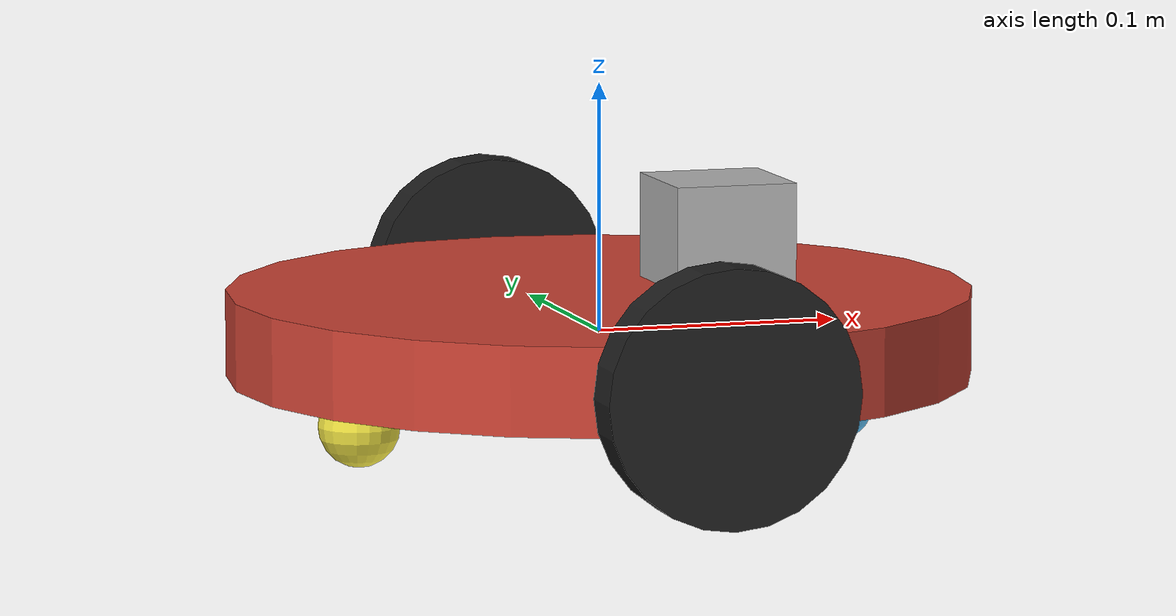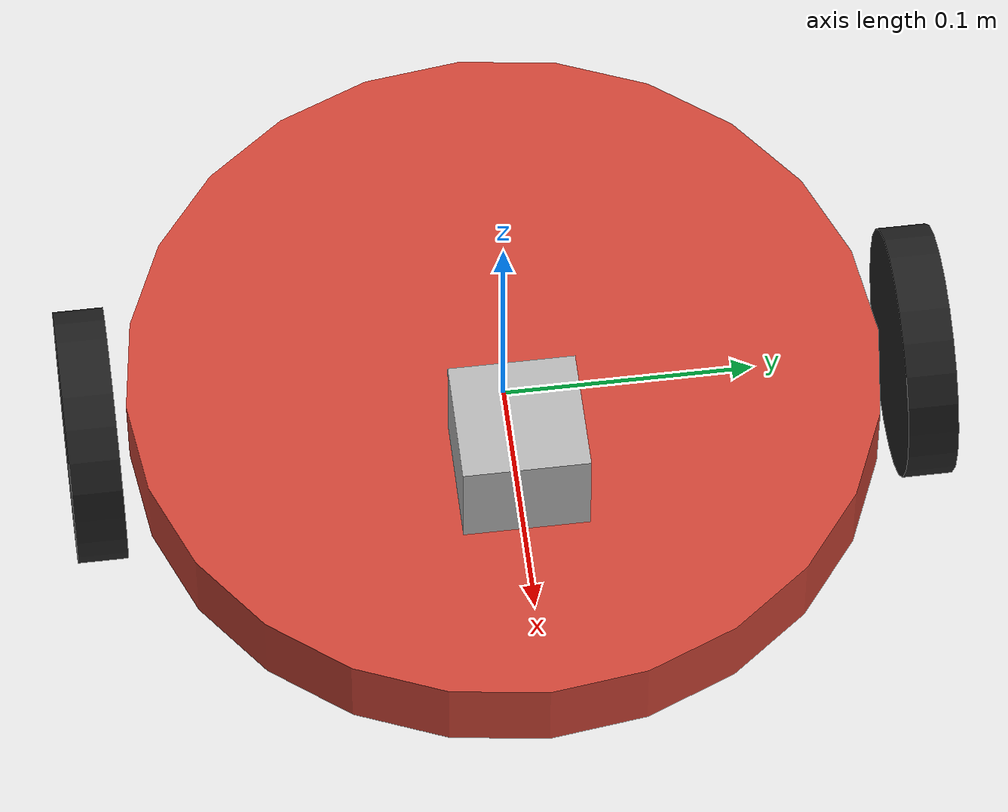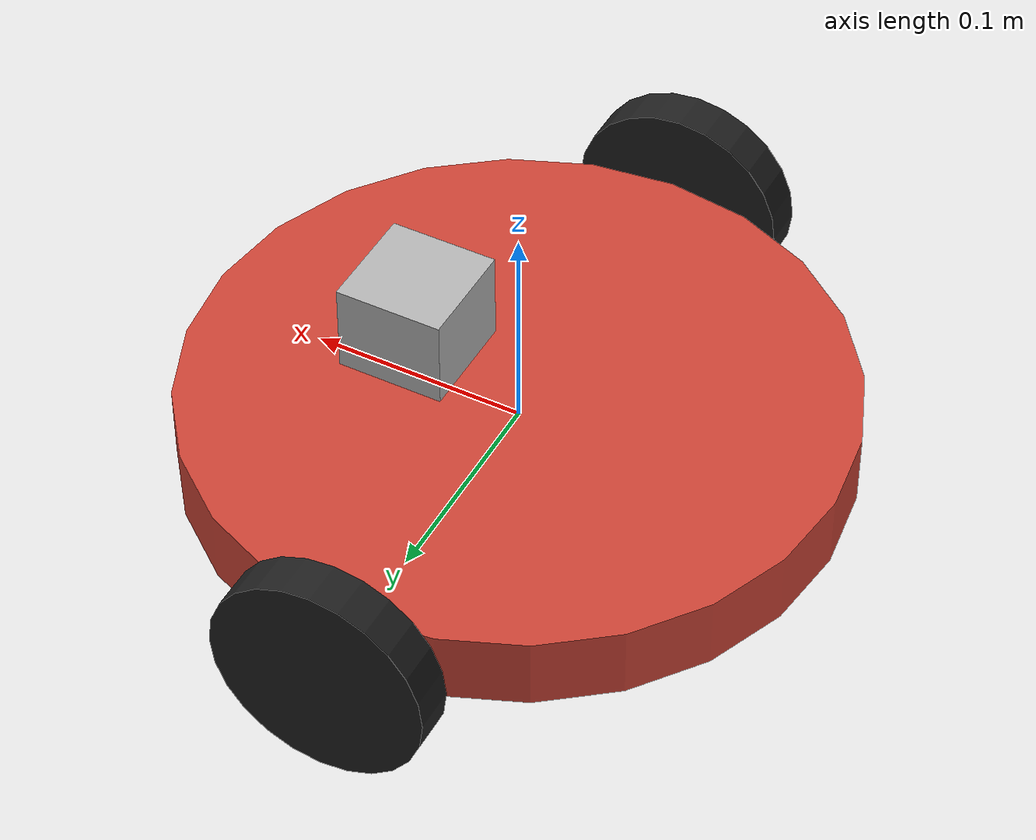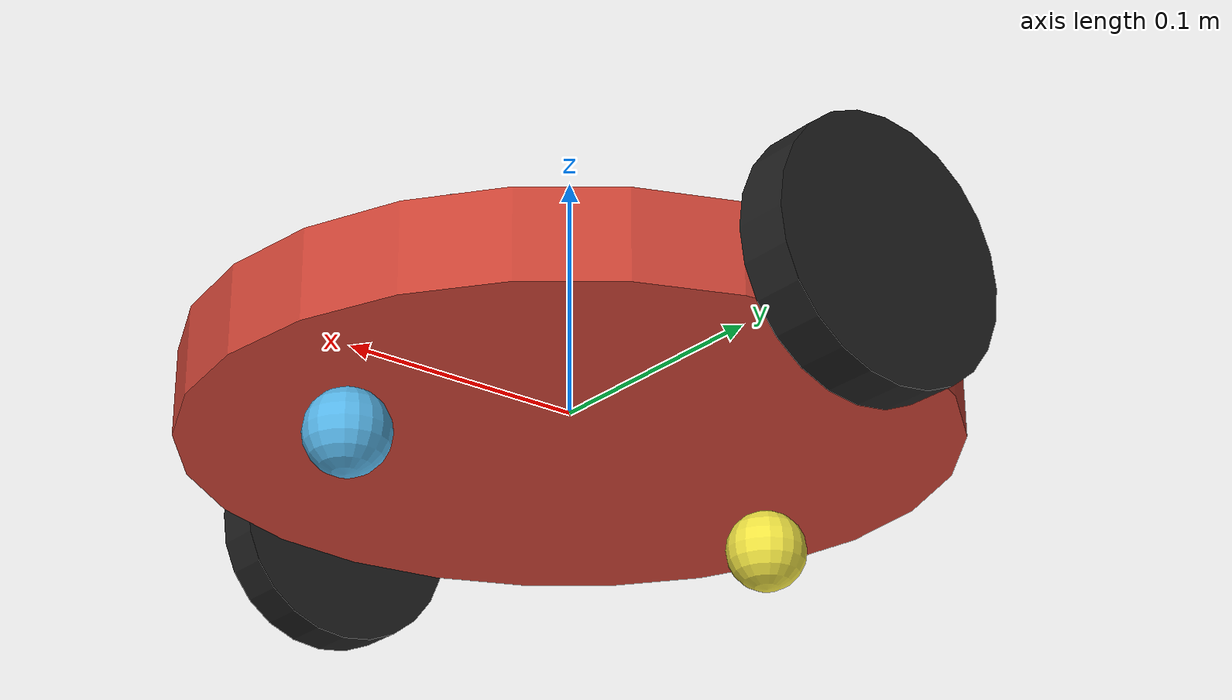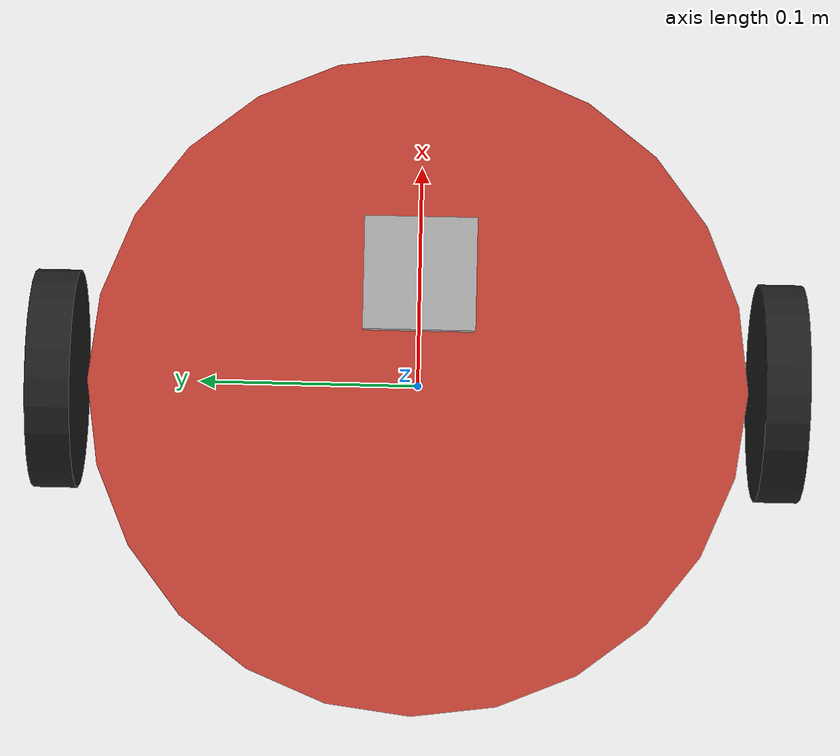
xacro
<?xml version="1.0" ?>

<robot name="dot" xmlns:xacro="https://www.ros.org/wiki/xacro" >

  <xacro:property name="scale" default="0.5" />
  <xacro:property name="camera_link" value="0.05" /> <!-- Size of square 'camera' box -->

  <gazebo>
    <plugin name="gazebo_ros_control" filename="libgazebo_ros_control.so">
      <robotNamespace>/dot</robotNamespace>
    </plugin>
  </gazebo>

  <material name="black">
    <color rgba="0.0 0.0 0.0 1.0"/>
  </material>
  <material name="blue">
    <color rgba="0.203125 0.23828125 0.28515625 1.0"/>
  </material>
  <material name="green">
    <color rgba="0.0 0.8 0.0 1.0"/>
  </material>
  <material name="grey">
    <color rgba="0.2 0.2 0.2 1.0"/>
  </material>
  <material name="orange">
    <color rgba="1.0 0.423529411765 0.0392156862745 1.0"/>
  </material>
  <material name="brown">
    <color rgba="0.870588235294 0.811764705882 0.764705882353 1.0"/>
  </material>
  <material name="red">
    <color rgba="0.796078431 0.262745098 0.207843137 1.0"/>
  </material>
  <material name="white">
    <color rgba="1.0 1.0 1.0 1.0"/>
  </material>

  <gazebo reference="caster_link">
    <material>Gazebo/Black</material>
  </gazebo>
  <gazebo reference="link_left_wheel">
    <material>Gazebo/Black</material>
  </gazebo>
  <gazebo reference="link_right_wheel">
    <material>Gazebo/Black</material>
  </gazebo>

  <link name="link_chassis">
    <!-- pose and inertial -->
    <pose>0 0 0.1 0 0 0</pose>

    <inertial>
      <mass value="${5 * scale}"/>
      <origin rpy="0 0 0" xyz="0 0 0"/>
      <inertia ixx="0.0395416666667" ixy="0" ixz="0" iyy="0.106208333333" iyz="0" izz="0.106208333333"/>
    </inertial>

    <collision name="collision_chassis">
      <geometry>
        <cylinder length="${0.07 * scale}" radius="${0.3 * scale}"/>
      </geometry>
    </collision>

    <visual>
      <origin rpy="0 0 0" xyz="0 0 0"/>
      <geometry>
        <cylinder length="${0.07 * scale}" radius="${0.3 * scale}"/>
      </geometry>
      <material name="red"/>
    </visual>
    </link>

  <!-- caster front -->
  <link name="caster_link_1">
    <inertial>
      <mass value="${0.2 * scale}"/>
      <origin rpy="0 0 0" xyz="0 0 0"/>
      <inertia ixx="0.00052666666" ixy="0" ixz="0" iyy="0.00052666666" iyz="0" izz="0.001"/>
    </inertial>
    <collision>
      <origin rpy="0 0 0" xyz="0 0 0" />
      <geometry>
        <sphere radius="${0.033 * scale}"/>
      </geometry>
    </collision>
    <visual>
      <origin rpy="0 0 0" xyz="0 0 0"/>
      <geometry>
        <sphere radius="${0.033 * scale}"/>
      </geometry>
    </visual>
  </link>

  <link name="dummy_link_1">
    <inertial>
      <mass value="${0.001 * scale}"/>
      <origin rpy="0 0 0" xyz="0 0 0"/>
      <inertia ixx="0" ixy="0" ixz="0" iyy="0.0" iyz="0" izz="0"/>
    </inertial>
  </link>

  <joint name="caster_joint_11" type="revolute">
    <origin rpy="0 0 0" xyz="${0.2 * scale} ${0 * scale} ${-0.0675 * scale}" />
    <child link="dummy_link_1" />
    <parent link="link_chassis" />
    <axis xyz="0 0 1" />
    <limit effort="0.26" velocity="20" />
    <joint_properties damping="0.1" friction="0.2" />
  </joint>

  <joint name="caster_joint_12" type="revolute">
    <origin rpy="0 0 0" xyz="0 0 0"/>
    <child link="caster_link_1" />
    <parent link="dummy_link_1" />
    <axis xyz="0 1 0" />
    <limit effort="0.26" velocity="20" />
    <joint_properties damping="0.1" friction="0.2" />
  </joint>

  <link name="caster_link_2">
    <inertial>
      <mass value="${0.2 * scale}"/>
      <origin rpy="0 0 0" xyz="0 0 0"/>
      <inertia ixx="0.00052666666" ixy="0" ixz="0" iyy="0.00052666666" iyz="0" izz="0.001"/>
    </inertial>
    <collision>
      <origin rpy="0 0 0" xyz="0 0 0" />
      <geometry>
        <sphere radius="${0.033 * scale}"/>
      </geometry>
    </collision>
    <visual>
      <origin rpy="0 0 0" xyz="0 0 0"/>
      <geometry>
        <sphere radius="${0.033 * scale}"/>
      </geometry>
    </visual>
  </link>

  <link name="dummy_link_2">
    <inertial>
      <mass value="${0.001 * scale}"/>
      <origin rpy="0 0 0" xyz="0 0 0"/>
      <inertia ixx="0" ixy="0" ixz="0" iyy="0.0" iyz="0" izz="0"/>
    </inertial>
  </link>

  <joint name="caster_joint_21" type="revolute">
    <origin rpy="0 0 0" xyz="${-0.2 * scale} ${0 * scale} ${-0.0675 * scale}"/>
    <child link="dummy_link_2" />
    <parent link="link_chassis" />
    <axis xyz="0 0 1" />
    <limit effort="0.26" velocity="20" />
    <joint_properties damping="0.1" friction="0.2" />
  </joint>

  <joint name="caster_joint_22" type="revolute">
    <origin rpy="0 0 0" xyz="0 0 0"/>
    <child link="caster_link_2" />
    <parent link="dummy_link_2" />
    <axis xyz="0 1 0" />
    <limit effort="0.26" velocity="20" />
    <joint_properties damping="0.1" friction="0.2" />
  </joint>

  <!-- Create wheel right -->

  <link name="link_right_wheel">
    <inertial>
      <mass value="${0.2 * scale}"/>
      <origin rpy="0 1.5707 1.5707" xyz="0 0 0"/>
      <inertia ixx="0.00052666666" ixy="0" ixz="0" iyy="0.00052666666" iyz="0" izz="0.001"/>
    </inertial>

    <collision name="link_right_wheel_collision">
      <origin rpy="0 1.5707 1.5707" xyz="0 0 0" />
      <geometry>
        <cylinder length="${0.04 * scale}" radius="${0.1 * scale}"/>
      </geometry>
    </collision>

    <visual name="link_right_wheel_visual">
      <origin rpy="0 1.5707 1.5707" xyz="0 0 0"/>
      <geometry>
        <cylinder length="${0.04 * scale}" radius="${0.1 * scale}"/>
      </geometry>
    </visual>

  </link>

  <!--   Joint for right wheel  -->
  <joint name="joint_right_wheel" type="continuous">
    <origin rpy="0 0 0" xyz="${0 * scale} ${0.33 * scale} ${0 * scale}"/>
    <child link="link_right_wheel" />
    <parent link="link_chassis"/>
    <axis rpy="0 0 0" xyz="${0 * scale} ${1 * scale} ${0 * scale}"/>
    <limit effort="2.6" velocity="20"/>
    <joint_properties damping="0.1" friction="0.2" />
  </joint>

  <!-- Left Wheel link -->

  <link name="link_left_wheel">
    <inertial>
      <mass value="${0.2 * scale}"/>
      <origin rpy="0 1.5707 1.5707" xyz="0 0 0"/>
      <inertia ixx="0.00052666666" ixy="0" ixz="0" iyy="0.00052666666" iyz="0" izz="0.001"/>
    </inertial>

    <collision name="link_left_wheel_collision">
      <origin rpy="0 1.5707 1.5707" xyz="0 0 0" />
      <geometry>
        <cylinder length="${0.04 * scale}" radius="${0.1 * scale}"/>
      </geometry>
    </collision>

    <visual name="link_left_wheel_visual">
      <origin rpy="0 1.5707 1.5707" xyz="0 0 0"/>
      <geometry>
        <cylinder length="${0.04 * scale}" radius="${0.1 * scale}"/>
      </geometry>
    </visual>

  </link>

  <!--   Joint for left wheel  -->
  <joint name="joint_left_wheel" type="continuous">
    <origin rpy="0 0 0" xyz="${0 * scale} ${-0.33 * scale} ${0 * scale}"/>
    <child link="link_left_wheel" />
    <parent link="link_chassis"/>
    <axis rpy="0 0 0" xyz="0 1 0"/>
    <limit effort="2.6" velocity="20"/>
    <joint_properties damping="0.1" friction="0.2" />
  </joint>

  <transmission name="tran1">
    <type>transmission_interface/SimpleTransmission</type>
    <joint name="joint_right_wheel">
      <hardwareInterface>hardware_interface/EffortJointInterface</hardwareInterface>
    </joint>
    <actuator name="right_motor">
      <hardwareInterface>hardware_interface/EffortJointInterface</hardwareInterface>
      <mechanicalReduction>50</mechanicalReduction>
    </actuator>
  </transmission>

  <transmission name="tran2">
    <type>transmission_interface/SimpleTransmission</type>
    <joint name="joint_left_wheel">
      <hardwareInterface>hardware_interface/EffortJointInterface</hardwareInterface>
    </joint>
    <actuator name="left_motor">
      <hardwareInterface>hardware_interface/EffortJointInterface</hardwareInterface>
      <mechanicalReduction>50</mechanicalReduction>
    </actuator>
  </transmission>

  <!-- Block Laser -->
  <joint name="hokuyo_joint" type="fixed">
    <axis xyz="0 1 0" />
    <origin xyz="${camera_link} 0 ${0.07 * scale}" rpy="0 0 0"/>
    <parent link="link_chassis"/>
    <child link="hokuyo_link"/>
  </joint>

  <!-- Hokuyo Laser -->
  <link name="hokuyo_link">
    <collision>
      <origin xyz="0 0 0" rpy="0 0 0"/>
      <geometry>
    <box size="0.1 0.1 0.1"/>
      </geometry>
    </collision>

    <visual>
      <origin xyz="0 0 0" rpy="0 0 0"/>
      <geometry>
        <box size="${camera_link} ${camera_link} ${camera_link}"/>
      </geometry>
    </visual>

    <inertial>
      <mass value="1e-5" />
      <origin xyz="0 0 0" rpy="0 0 0"/>
      <inertia ixx="1e-6" ixy="0" ixz="0" iyy="1e-6" iyz="0" izz="1e-6" />
    </inertial>
  </link>

  <!-- hokuyo -->
  <gazebo reference="hokuyo_link">
    <sensor type="gpu_ray" name="head_hokuyo_sensor">
      <pose>0 0 0 0 0 0</pose>
      <visualize>true</visualize>
      <update_rate>40</update_rate>
      <ray>
        <scan>
          <horizontal>
            <samples>720</samples>
            <resolution>1</resolution>
            <min_angle>-1.570796</min_angle>
            <max_angle>1.570796</max_angle>
          </horizontal>
        </scan>
        <range>
          <min>0.10</min>
          <max>30.0</max>
          <resolution>0.01</resolution>
        </range>
        <noise>
          <type>gaussian</type>
          <mean>0.0</mean>
          <stddev>0.01</stddev>
        </noise>
      </ray>
      <plugin name="gazebo_ros_head_hokuyo_controller" filename="libgazebo_ros_gpu_laser.so">
        <topicName>/dot/laser/scan</topicName>
        <frameName>hokuyo_link</frameName>
      </plugin>
    </sensor>
  </gazebo>

</robot>
